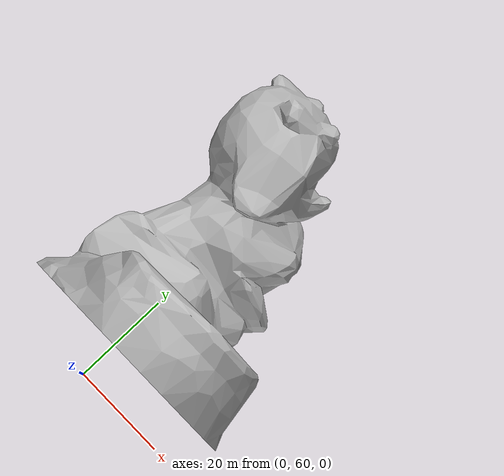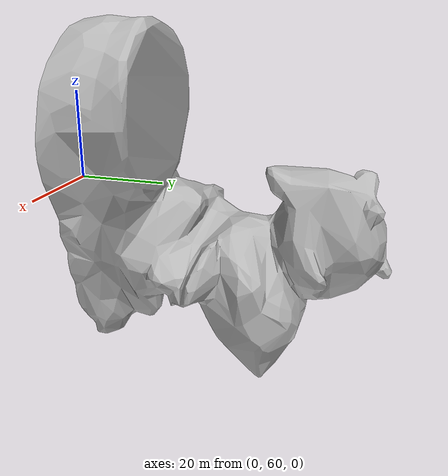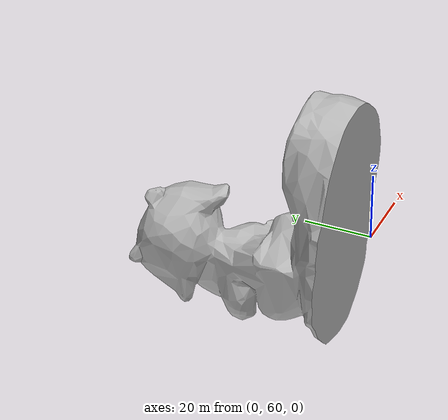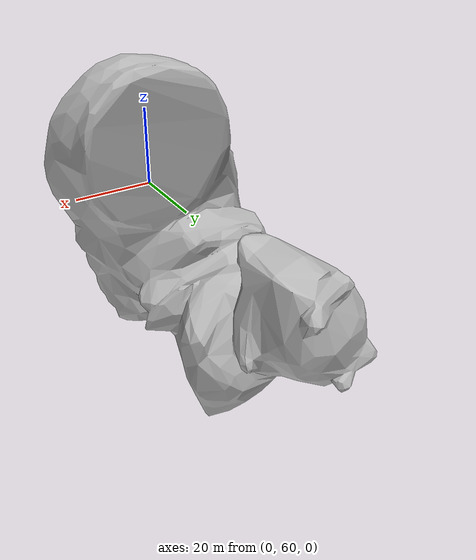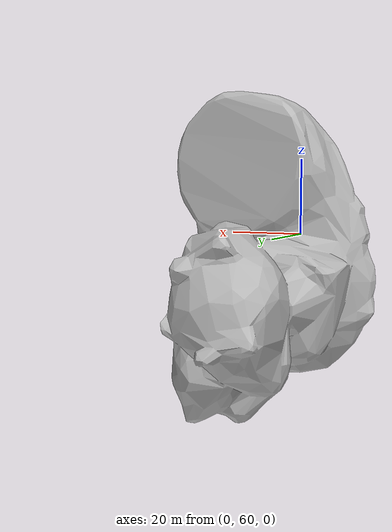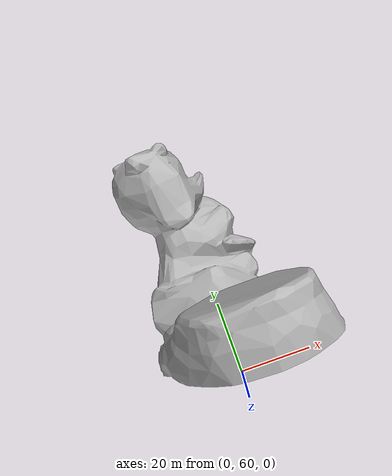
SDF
<?xml version="1.0" ?>
<sdf version="1.5">
  <model name="candle_dog">
    <pose>0 0 0  0 0 0</pose>
      <static>true</static>
      <link name="body">
        <visual name="visual">
          <geometry>
            <mesh><uri>model://candle_dog/models/Dog_Candlestick_LP.dae</uri></mesh>
          </geometry>
        </visual>
      </link>
  </model>
</sdf>
